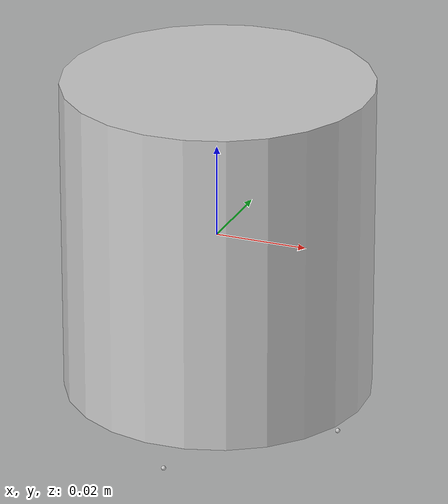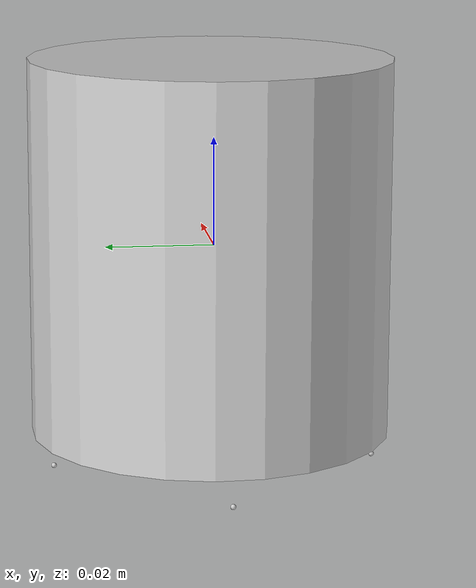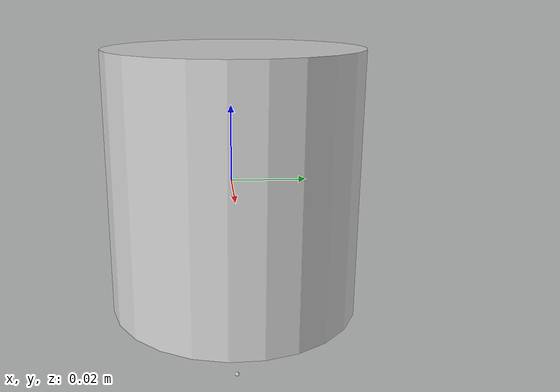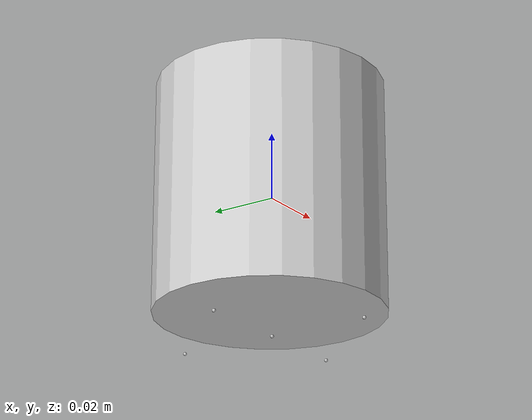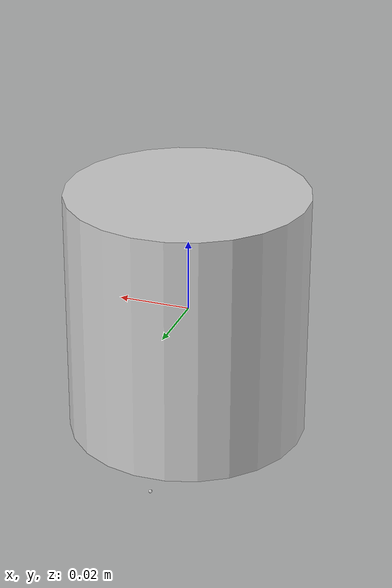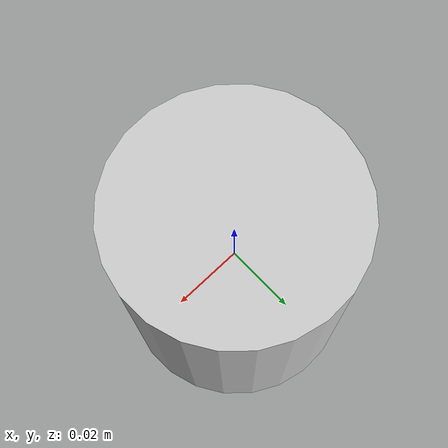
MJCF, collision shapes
<mujoco model="textured">
  <asset>
  <texture file="meshes/textured/texture_map.png" name="tex-textured" type="2d" />
  <material name="textured" reflectance="0.5" texrepeat="1 1" texture="tex-textured" texuniform="false" />
  <mesh file="meshes/textured/visual/textured_vis.msh" name="textured_vis" scale="0.01 0.01 0.01" /></asset>
  <worldbody>
    <body>
      <body name="object">
      <geom solimp="0.998 0.998 0.001" solref="0.001 1" density="100" friction="0.95 0.3 0.1" type="mesh" mesh="textured_vis" conaffinity="0" contype="0" group="1" material="textured" /><geom solimp="0.998 0.998 0.001" solref="0.001 1" density="100" friction="0.95 0.3 0.1" type="cylinder" pos="0.00000 0.00065 0.00000" quat="0.00999 0.00001 0.00000 -0.00047" size="0.03328 0.03472" group="0" rgba="0.8 0.8 0.8 0.3" /><geom solimp="0.998 0.998 0.001" solref="0.001 1" density="100" friction="0.95 0.3 0.1" type="ellipsoid" pos="0.00000 0.00000 -0.04126" quat="0.00023 0.00429 0.00901 -0.00065" size="0.00050 0.00050 0.00050" group="0" rgba="0.8 0.8 0.8 0.3" /><geom solimp="0.998 0.998 0.001" solref="0.001 1" density="100" friction="0.95 0.3 0.1" type="ellipsoid" pos="0.00000 -0.03006 -0.04126" quat="0.00940 0.00030 0.00062 0.00334" size="0.00050 0.00050 0.00050" group="0" rgba="0.8 0.8 0.8 0.3" /><geom solimp="0.998 0.998 0.001" solref="0.001 1" density="100" friction="0.95 0.3 0.1" type="ellipsoid" pos="0.02780 -0.00000 -0.04126" quat="0.00062 -0.00334 0.00940 -0.00030" size="0.00050 0.00050 0.00050" group="0" rgba="0.8 0.8 0.8 0.3" /><geom solimp="0.998 0.998 0.001" solref="0.001 1" density="100" friction="0.95 0.3 0.1" type="ellipsoid" pos="-0.00000 0.03006 -0.04126" quat="0.00029 -0.00338 0.00938 0.00063" size="0.00050 0.00050 0.00050" group="0" rgba="0.8 0.8 0.8 0.3" /><geom solimp="0.998 0.998 0.001" solref="0.001 1" density="100" friction="0.95 0.3 0.1" type="ellipsoid" pos="-0.02780 0.00000 -0.04126" quat="0.00668 -0.00069 -0.00004 0.00741" size="0.00050 0.00050 0.00050" group="0" rgba="0.8 0.8 0.8 0.3" /></body>
      <site rgba="0 0 0 0" size="0.005" pos="0 0 -0.06" name="bottom_site" />
      <site rgba="0 0 0 0" size="0.005" pos="0 0 0.04" name="top_site" />
      <site rgba="0 0 0 0" size="0.005" pos="0.025 0.025 0" name="horizontal_radius_site" />
    </body>
  </worldbody>
</mujoco>
